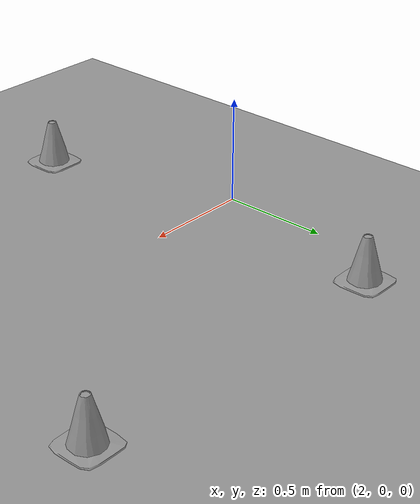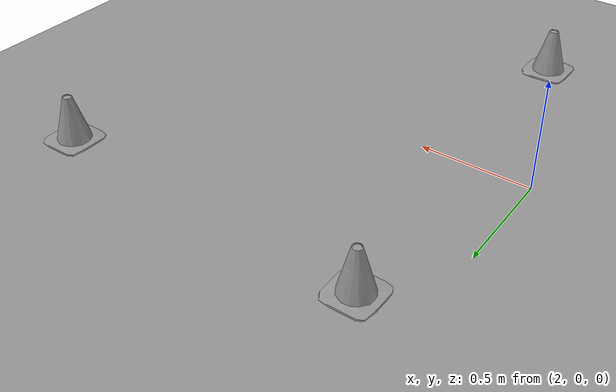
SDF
<sdf version="1.6">
 <world name="default">
  <model name="ground_plane_0">
   <static>1</static>
   <link name="link">
    <collision name="collision">
     <geometry><plane><normal>0 0 1</normal><size>100 100</size></plane></geometry>
     <surface><friction><ode><mu>100</mu><mu2>50</mu2></ode></friction></surface>
    </collision>
    <visual name="visual">
     <cast_shadows>0</cast_shadows>
     <geometry><plane><normal>0 0 1</normal><size>100 100</size></plane></geometry>
     <material>
      <script><uri>file://media/materials/scripts/gazebo.material</uri><name>Gazebo/Grey</name></script>
     </material>
    </visual>
    <velocity_decay><linear>0</linear><angular>0</angular></velocity_decay>
   </link>
   <pose>0.497681 0 0 0 -0 0</pose>
  </model>
  <model name="cone_mini">
   <link name="link_1">
    <inertial>
     <mass>1</mass>
     <inertia>
      <ixx>0.166667</ixx>
      <ixy>0</ixy>
      <ixz>0</ixz>
      <iyy>0.166667</iyy>
      <iyz>0</iyz>
      <izz>0.166667</izz>
     </inertia>
    </inertial>
    <visual name="visual">
     <geometry>
      <mesh>
       <uri>/home/martin/catkin_ws/src/mybot/src/mybot_description/meshes/Cone/Cone_mini.dae</uri>
       <scale>1 1 1</scale>
      </mesh>
     </geometry>
     <material>
      <lighting>1</lighting>
      <script><uri>file://media/materials/scripts/gazebo.material</uri><name>Gazebo/Grey</name></script>
      <ambient>0.3 0.3 0.3 1</ambient>
      <diffuse>0.7 0.7 0.7 1</diffuse>
      <specular>0.01 0.01 0.01 1</specular>
      <emissive>0 0 0 1</emissive>
     </material>
    </visual>
    <collision name="collision">
     <geometry>
      <mesh>
       <uri>/home/martin/catkin_ws/src/mybot/src/mybot_description/meshes/Cone/Cone_mini.dae</uri>
       <scale>1 1 1</scale>
      </mesh>
     </geometry>
     <surface>
      <friction>
       <ode><mu>1</mu><mu2>1</mu2><fdir1>0 0 0</fdir1><slip1>0</slip1><slip2>0</slip2></ode>
       <torsional>
        <coefficient>1</coefficient>
        <patch_radius>0</patch_radius>
        <surface_radius>0</surface_radius>
        <use_patch_radius>1</use_patch_radius>
        <ode><slip>0</slip></ode>
       </torsional>
      </friction>
      <bounce><restitution_coefficient>0</restitution_coefficient><threshold>1e+06</threshold></bounce>
      <contact>
       <collide_without_contact>0</collide_without_contact>
       <collide_without_contact_bitmask>1</collide_without_contact_bitmask>
       <collide_bitmask>1</collide_bitmask>
       <ode>
        <soft_cfm>0</soft_cfm>
        <soft_erp>0.2</soft_erp>
        <kp>1e+13</kp>
        <kd>1</kd>
        <max_vel>0.01</max_vel>
        <min_depth>0</min_depth>
       </ode>
       <bullet>
        <split_impulse>1</split_impulse>
        <split_impulse_penetration_threshold>-0.01</split_impulse_penetration_threshold>
        <soft_cfm>0</soft_cfm>
        <soft_erp>0.2</soft_erp>
        <kp>1e+13</kp>
        <kd>1</kd>
       </bullet>
      </contact>
     </surface>
    </collision>
   </link>
   <static>1</static>
   <pose>2.31587 -0.486795 -0.627558 0 -0 0</pose>
  </model>
  <model name="cone_mini_clone_1">
   <link name="link_1">
    <inertial>
     <mass>1</mass>
     <inertia>
      <ixx>0.166667</ixx>
      <ixy>0</ixy>
      <ixz>0</ixz>
      <iyy>0.166667</iyy>
      <iyz>0</iyz>
      <izz>0.166667</izz>
     </inertia>
    </inertial>
    <visual name="visual">
     <geometry>
      <mesh>
       <uri>/home/martin/catkin_ws/src/mybot/src/mybot_description/meshes/Cone/Cone_mini.dae</uri>
       <scale>1 1 1</scale>
      </mesh>
     </geometry>
     <material>
      <lighting>1</lighting>
      <script><uri>file://media/materials/scripts/gazebo.material</uri><name>Gazebo/Grey</name></script>
      <ambient>0.3 0.3 0.3 1</ambient>
      <diffuse>0.7 0.7 0.7 1</diffuse>
      <specular>0.01 0.01 0.01 1</specular>
      <emissive>0 0 0 1</emissive>
     </material>
    </visual>
    <collision name="collision">
     <geometry>
      <mesh>
       <uri>/home/martin/catkin_ws/src/mybot/src/mybot_description/meshes/Cone/Cone_mini.dae</uri>
       <scale>1 1 1</scale>
      </mesh>
     </geometry>
     <surface>
      <friction>
       <ode><mu>1</mu><mu2>1</mu2><fdir1>0 0 0</fdir1><slip1>0</slip1><slip2>0</slip2></ode>
       <torsional>
        <coefficient>1</coefficient>
        <patch_radius>0</patch_radius>
        <surface_radius>0</surface_radius>
        <use_patch_radius>1</use_patch_radius>
        <ode><slip>0</slip></ode>
       </torsional>
      </friction>
      <bounce><restitution_coefficient>0</restitution_coefficient><threshold>1e+06</threshold></bounce>
      <contact>
       <collide_without_contact>0</collide_without_contact>
       <collide_without_contact_bitmask>1</collide_without_contact_bitmask>
       <collide_bitmask>1</collide_bitmask>
       <ode>
        <soft_cfm>0</soft_cfm>
        <soft_erp>0.2</soft_erp>
        <kp>1e+13</kp>
        <kd>1</kd>
        <max_vel>0.01</max_vel>
        <min_depth>0</min_depth>
       </ode>
       <bullet>
        <split_impulse>1</split_impulse>
        <split_impulse_penetration_threshold>-0.01</split_impulse_penetration_threshold>
        <soft_cfm>0</soft_cfm>
        <soft_erp>0.2</soft_erp>
        <kp>1e+13</kp>
        <kd>1</kd>
       </bullet>
      </contact>
     </surface>
    </collision>
   </link>
   <static>1</static>
   <pose>2.23167 1.31225 -0.627558 0 -0 0</pose>
  </model>
  <model name="cone_mini_clone_2">
   <link name="link_1">
    <inertial>
     <mass>1</mass>
     <inertia>
      <ixx>0.166667</ixx>
      <ixy>0</ixy>
      <ixz>0</ixz>
      <iyy>0.166667</iyy>
      <iyz>0</iyz>
      <izz>0.166667</izz>
     </inertia>
    </inertial>
    <visual name="visual">
     <geometry>
      <mesh>
       <uri>/home/martin/catkin_ws/src/mybot/src/mybot_description/meshes/Cone/Cone_mini.dae</uri>
       <scale>1 1 1</scale>
      </mesh>
     </geometry>
     <material>
      <lighting>1</lighting>
      <script><uri>file://media/materials/scripts/gazebo.material</uri><name>Gazebo/Grey</name></script>
      <ambient>0.3 0.3 0.3 1</ambient>
      <diffuse>0.7 0.7 0.7 1</diffuse>
      <specular>0.01 0.01 0.01 1</specular>
      <emissive>0 0 0 1</emissive>
     </material>
    </visual>
    <collision name="collision">
     <geometry>
      <mesh>
       <uri>/home/martin/catkin_ws/src/mybot/src/mybot_description/meshes/Cone/Cone_mini.dae</uri>
       <scale>1 1 1</scale>
      </mesh>
     </geometry>
     <surface>
      <friction>
       <ode><mu>1</mu><mu2>1</mu2><fdir1>0 0 0</fdir1><slip1>0</slip1><slip2>0</slip2></ode>
       <torsional>
        <coefficient>1</coefficient>
        <patch_radius>0</patch_radius>
        <surface_radius>0</surface_radius>
        <use_patch_radius>1</use_patch_radius>
        <ode><slip>0</slip></ode>
       </torsional>
      </friction>
      <bounce><restitution_coefficient>0</restitution_coefficient><threshold>1e+06</threshold></bounce>
      <contact>
       <collide_without_contact>0</collide_without_contact>
       <collide_without_contact_bitmask>1</collide_without_contact_bitmask>
       <collide_bitmask>1</collide_bitmask>
       <ode>
        <soft_cfm>0</soft_cfm>
        <soft_erp>0.2</soft_erp>
        <kp>1e+13</kp>
        <kd>1</kd>
        <max_vel>0.01</max_vel>
        <min_depth>0</min_depth>
       </ode>
       <bullet>
        <split_impulse>1</split_impulse>
        <split_impulse_penetration_threshold>-0.01</split_impulse_penetration_threshold>
        <soft_cfm>0</soft_cfm>
        <soft_erp>0.2</soft_erp>
        <kp>1e+13</kp>
        <kd>1</kd>
       </bullet>
      </contact>
     </surface>
    </collision>
   </link>
   <static>1</static>
   <pose>3.73045 1.2441 -0.627558 0 -0 0</pose>
  </model>
 </world>
</sdf>
